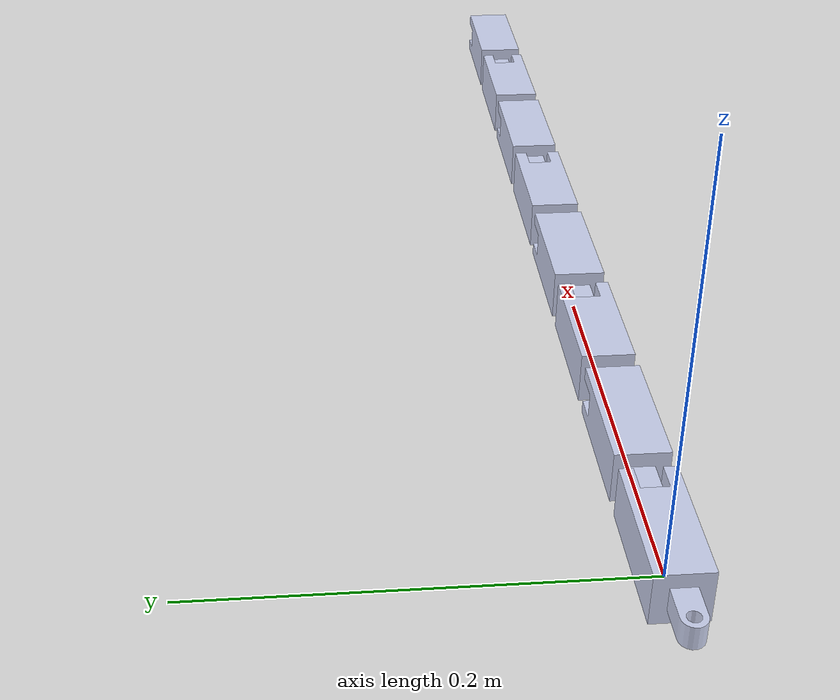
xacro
<?xml version="1.0"?>
<!-- Name your robot here -->
<robot name ="snake" xmlns:xacro="http://wiki.ros.org/xacro">

<!-- Include your urdf files here -->
	<!-- Include Robot's urdf filepath -->
	<!-- Include Lidar's urdf filepath -->
	<xacro:include filename="$(find snake)/urdf/snake.urdf"/>

<!-- Add your gazebo sensors here -->

<!--  Gazebo plugin for control here is already added for you -->
<gazebo>
	<plugin name="gazebo_ros_control" filename="libgazebo_ros_control.so">
		<robotNamespace>/snake</robotNamespace>
		<robotSimType>gazebo_ros_control/DefaultRobotHWSim</robotSimType>
		<legacyModeNS>true</legacyModeNS>
	</plugin>
</gazebo>

	<transmission name="joint1_trans">
		<type>transmission_interface/SimpleTransmission</type>
		<joint name="joint1">
			<hardwareInterface>hardware_interface/EffortJointInterface</hardwareInterface>
		</joint>
		<actuator name="joint1_motor">
			<mechanicalReduction>1</mechanicalReduction>
			<hardwareInterface>hardware_interface/EffortJointInterface</hardwareInterface>
		</actuator>
  	</transmission>

	<transmission name="joint2_trans">
		<type>transmission_interface/SimpleTransmission</type>
		<joint name="joint2">
			<hardwareInterface>hardware_interface/EffortJointInterface</hardwareInterface>
		</joint>
		<actuator name="joint2_motor">
			<mechanicalReduction>1</mechanicalReduction>
			<hardwareInterface>hardware_interface/EffortJointInterface</hardwareInterface>
		</actuator>
  	</transmission>

	<transmission name="joint3_trans">
		<type>transmission_interface/SimpleTransmission</type>
		<joint name="joint3">
			<hardwareInterface>hardware_interface/EffortJointInterface</hardwareInterface>
		</joint>
		<actuator name="joint3_motor">
			<mechanicalReduction>1</mechanicalReduction>
			<hardwareInterface>hardware_interface/EffortJointInterface</hardwareInterface>
		</actuator>
  	</transmission>

	<transmission name="joint4_trans">
		<type>transmission_interface/SimpleTransmission</type>
		<joint name="joint4">
			<hardwareInterface>hardware_interface/EffortJointInterface</hardwareInterface>
		</joint>
		<actuator name="joint4_motor">
			<mechanicalReduction>1</mechanicalReduction>
			<hardwareInterface>hardware_interface/EffortJointInterface</hardwareInterface>
		</actuator>
  	</transmission>

	<transmission name="joint5_trans">
		<type>transmission_interface/SimpleTransmission</type>
		<joint name="joint5">
			<hardwareInterface>hardware_interface/EffortJointInterface</hardwareInterface>
		</joint>
		<actuator name="joint5_motor">
			<mechanicalReduction>1</mechanicalReduction>
			<hardwareInterface>hardware_interface/EffortJointInterface</hardwareInterface>
		</actuator>
  	</transmission>

	<transmission name="joint6_trans">
		<type>transmission_interface/SimpleTransmission</type>
		<joint name="joint6">
			<hardwareInterface>hardware_interface/EffortJointInterface</hardwareInterface>
		</joint>
		<actuator name="joint6_motor">
			<mechanicalReduction>1</mechanicalReduction>
			<hardwareInterface>hardware_interface/EffortJointInterface</hardwareInterface>
		</actuator>
  	</transmission>

	<transmission name="joint7_trans">
		<type>transmission_interface/SimpleTransmission</type>
		<joint name="joint7">
			<hardwareInterface>hardware_interface/EffortJointInterface</hardwareInterface>
		</joint>
		<actuator name="joint7_motor">
			<mechanicalReduction>1</mechanicalReduction>
			<hardwareInterface>hardware_interface/EffortJointInterface</hardwareInterface>
		</actuator>
  	</transmission>
<!-- Create a joint between your robot and sensor -->
	<link name="dummy_link">
	<pose> 0 0 0 0 0 0
		</pose>
	</link>

	<joint name="dummy_joint" type="fixed">
		<parent link="dummy_link"/>
		<child link="base_link"/>
	</joint>

</robot>

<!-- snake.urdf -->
<robot
  name="snake">
  <link
    name="base_link">
    <inertial>
      <origin
        xyz="0.00156244709217369 7.36156561796138E-20 0.0127"
        rpy="0 0 0" />
      <mass
        value="0.039327668789256" />
      <inertia
        ixx="4.18513649730574E-06"
        ixy="-1.1667469009904E-21"
        ixz="-2.14329509741926E-22"
        iyy="1.60874850962809E-05"
        iyz="2.14786092918783E-22"
        izz="1.62585612822121E-05" />
    </inertial>
    <visual>
      <origin
        xyz="0 0 0"
        rpy="0 0 0" />
      <geometry>
        <mesh
          filename="package://snake/meshes/base_link.STL" />
      </geometry>
      <material
        name="">
        <color
          rgba="0.792156862745098 0.819607843137255 0.933333333333333 1" />
      </material>
    </visual>
    <collision>
      <origin
        xyz="0 0 0"
        rpy="0 0 0" />
      <geometry>
        <mesh
          filename="package://snake/meshes/base_link.STL" />
      </geometry>
    </collision>
  </link>
  <link
    name="link2">
    <inertial>
      <origin
        xyz="0.0422024470921737 -2.10330446227468E-20 0.00444499999999999"
        rpy="0 0 0" />
      <mass
        value="0.039327668789256" />
      <inertia
        ixx="4.18513649730575E-06"
        ixy="-2.19903965891902E-21"
        ixz="-2.20120945843827E-21"
        iyy="1.60874850962809E-05"
        iyz="-3.88800265581256E-23"
        izz="1.62585612822122E-05" />
    </inertial>
    <visual>
      <origin
        xyz="0 0 0"
        rpy="0 0 0" />
      <geometry>
        <mesh
          filename="package://snake/meshes/link2.STL" />
      </geometry>
      <material
        name="">
        <color
          rgba="0.792156862745098 0.819607843137255 0.933333333333333 1" />
      </material>
    </visual>
    <collision>
      <origin
        xyz="0 0 0"
        rpy="0 0 0" />
      <geometry>
        <mesh
          filename="package://snake/meshes/link2.STL" />
      </geometry>
    </collision>
  </link>
  <joint
    name="joint1"
    type="continuous">
    <origin
      xyz="0.03175 0.00444499999999999 0.0127"
      rpy="1.5707963267949 0 0" />
    <parent
      link="base_link" />
    <child
      link="link2" />
    <axis
      xyz="0 0 -1" />
  </joint>
  <link
    name="link3">
    <inertial>
      <origin
        xyz="0.0422024470921737 9.54556822600721E-19 -0.00444499999999999"
        rpy="0 0 0" />
      <mass
        value="0.039327668789256" />
      <inertia
        ixx="4.18513649730574E-06"
        ixy="-3.54105516795188E-23"
        ixz="-1.10520880724734E-23"
        iyy="1.60874850962809E-05"
        iyz="2.432636351725E-22"
        izz="1.62585612822121E-05" />
    </inertial>
    <visual>
      <origin
        xyz="0 0 0"
        rpy="0 0 0" />
      <geometry>
        <mesh
          filename="package://snake/meshes/link3.STL" />
      </geometry>
      <material
        name="">
        <color
          rgba="0.792156862745098 0.819607843137255 0.933333333333333 1" />
      </material>
    </visual>
    <collision>
      <origin
        xyz="0 0 0"
        rpy="0 0 0" />
      <geometry>
        <mesh
          filename="package://snake/meshes/link3.STL" />
      </geometry>
    </collision>
  </link>
  <joint
    name="joint2"
    type="continuous">
    <origin
      xyz="0.07239 0.00444499999999999 0.004445"
      rpy="-1.5707963267949 0 0" />
    <parent
      link="link2" />
    <child
      link="link3" />
    <axis
      xyz="0 0 1" />
  </joint>
  <link
    name="link4">
    <inertial>
      <origin
        xyz="0.0422024470921736 6.29419507574761E-18 0.00444499999999998"
        rpy="0 0 0" />
      <mass
        value="0.039327668789256" />
      <inertia
        ixx="4.18513649730575E-06"
        ixy="-3.41587341436935E-21"
        ixz="1.42954767411083E-21"
        iyy="1.60874850962809E-05"
        iyz="-7.01002818522396E-23"
        izz="1.62585612822122E-05" />
    </inertial>
    <visual>
      <origin
        xyz="0 0 0"
        rpy="0 0 0" />
      <geometry>
        <mesh
          filename="package://snake/meshes/link4.STL" />
      </geometry>
      <material
        name="">
        <color
          rgba="0.792156862745098 0.819607843137255 0.933333333333333 1" />
      </material>
    </visual>
    <collision>
      <origin
        xyz="0 0 0"
        rpy="0 0 0" />
      <geometry>
        <mesh
          filename="package://snake/meshes/link4.STL" />
      </geometry>
    </collision>
  </link>
  <joint
    name="joint3"
    type="continuous">
    <origin
      xyz="0.07239 0.00444499999999999 -0.00444499999999999"
      rpy="1.5707963267949 0 0" />
    <parent
      link="link3" />
    <child
      link="link4" />
    <axis
      xyz="0 0 -1" />
  </joint>
  <link
    name="link5">
    <inertial>
      <origin
        xyz="0.0422024470921738 -1.01128700482706E-18 -0.004445"
        rpy="0 0 0" />
      <mass
        value="0.0393276687892559" />
      <inertia
        ixx="4.18513649730574E-06"
        ixy="2.31030423538127E-22"
        ixz="1.08843235987676E-21"
        iyy="1.60874850962809E-05"
        iyz="2.22985805258643E-22"
        izz="1.62585612822121E-05" />
    </inertial>
    <visual>
      <origin
        xyz="0 0 0"
        rpy="0 0 0" />
      <geometry>
        <mesh
          filename="package://snake/meshes/link5.STL" />
      </geometry>
      <material
        name="">
        <color
          rgba="0.792156862745098 0.819607843137255 0.933333333333333 1" />
      </material>
    </visual>
    <collision>
      <origin
        xyz="0 0 0"
        rpy="0 0 0" />
      <geometry>
        <mesh
          filename="package://snake/meshes/link5.STL" />
      </geometry>
    </collision>
  </link>
  <joint
    name="joint4"
    type="continuous">
    <origin
      xyz="0.0723899999999999 0.004445 0.00444499999999998"
      rpy="-1.5707963267949 0 0" />
    <parent
      link="link4" />
    <child
      link="link5" />
    <axis
      xyz="0 0 1" />
  </joint>
  <link
    name="link6">
    <inertial>
      <origin
        xyz="0.0422024470921739 1.14171053944471E-17 0.00444499999999999"
        rpy="0 0 0" />
      <mass
        value="0.0393276687892559" />
      <inertia
        ixx="4.18513649730573E-06"
        ixy="-5.03587076614771E-21"
        ixz="7.07027596030047E-22"
        iyy="1.60874850962808E-05"
        iyz="-1.96953333556634E-22"
        izz="1.62585612822121E-05" />
    </inertial>
    <visual>
      <origin
        xyz="0 0 0"
        rpy="0 0 0" />
      <geometry>
        <mesh
          filename="package://snake/meshes/link6.STL" />
      </geometry>
      <material
        name="">
        <color
          rgba="0.792156862745098 0.819607843137255 0.933333333333333 1" />
      </material>
    </visual>
    <collision>
      <origin
        xyz="0 0 0"
        rpy="0 0 0" />
      <geometry>
        <mesh
          filename="package://snake/meshes/link6.STL" />
      </geometry>
    </collision>
  </link>
  <joint
    name="joint5"
    type="continuous">
    <origin
      xyz="0.0723900000000001 0.00444499999999999 -0.004445"
      rpy="1.5707963267949 0 0" />
    <parent
      link="link5" />
    <child
      link="link6" />
    <axis
      xyz="0 0 -1" />
  </joint>
  <link
    name="link7">
    <inertial>
      <origin
        xyz="0.0422024470921736 5.68666969897189E-19 -0.00444499999999999"
        rpy="0 0 0" />
      <mass
        value="0.0393276687892559" />
      <inertia
        ixx="4.18513649730574E-06"
        ixy="-3.395315255664E-21"
        ixz="1.78792287357896E-21"
        iyy="1.60874850962808E-05"
        iyz="9.76492694101602E-23"
        izz="1.62585612822121E-05" />
    </inertial>
    <visual>
      <origin
        xyz="0 0 0"
        rpy="0 0 0" />
      <geometry>
        <mesh
          filename="package://snake/meshes/link7.STL" />
      </geometry>
      <material
        name="">
        <color
          rgba="0.792156862745098 0.819607843137255 0.933333333333333 1" />
      </material>
    </visual>
    <collision>
      <origin
        xyz="0 0 0"
        rpy="0 0 0" />
      <geometry>
        <mesh
          filename="package://snake/meshes/link7.STL" />
      </geometry>
    </collision>
  </link>
  <joint
    name="joint6"
    type="continuous">
    <origin
      xyz="0.07239 0.004445 0.004445"
      rpy="-1.5708 0 0" />
    <parent
      link="link6" />
    <child
      link="link7" />
    <axis
      xyz="0 0 1" />
  </joint>
  <link
    name="link8">
    <inertial>
      <origin
        xyz="0.0422024470921739 2.5993806775774E-17 0.00444499999999999"
        rpy="0 0 0" />
      <mass
        value="0.0393276687892559" />
      <inertia
        ixx="4.18513649730574E-06"
        ixy="-7.05713762424341E-21"
        ixz="6.34879067644202E-22"
        iyy="1.60874850962808E-05"
        iyz="-2.55336093726076E-23"
        izz="1.62585612822121E-05" />
    </inertial>
    <visual>
      <origin
        xyz="0 0 0"
        rpy="0 0 0" />
      <geometry>
        <mesh
          filename="package://snake/meshes/link8.STL" />
      </geometry>
      <material
        name="">
        <color
          rgba="0.792156862745098 0.819607843137255 0.933333333333333 1" />
      </material>
    </visual>
    <collision>
      <origin
        xyz="0 0 0"
        rpy="0 0 0" />
      <geometry>
        <mesh
          filename="package://snake/meshes/link8.STL" />
      </geometry>
    </collision>
  </link>
  <joint
    name="joint7"
    type="continuous">
    <origin
      xyz="0.0723899999999999 0.00444499999999998 -0.00444499999999999"
      rpy="1.5707963267949 0 0" />
    <parent
      link="link7" />
    <child
      link="link8" />
    <axis
      xyz="0 0 -1" />
  </joint>
</robot>
